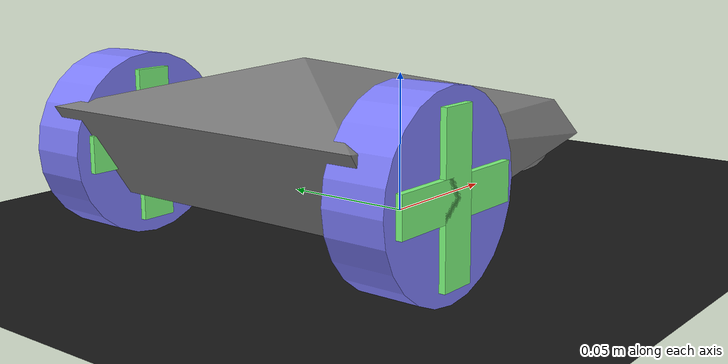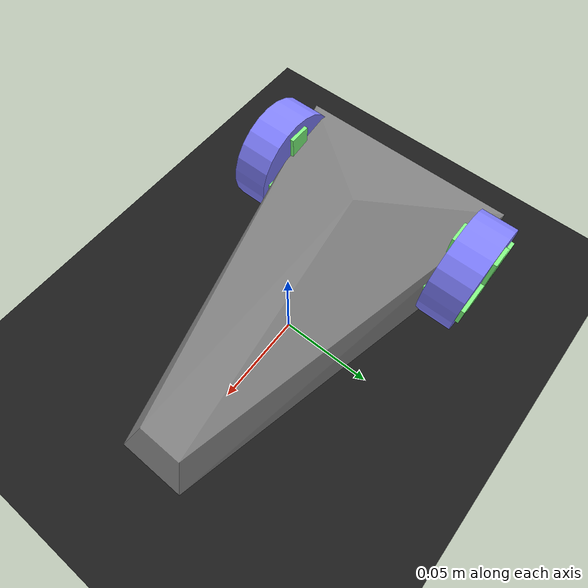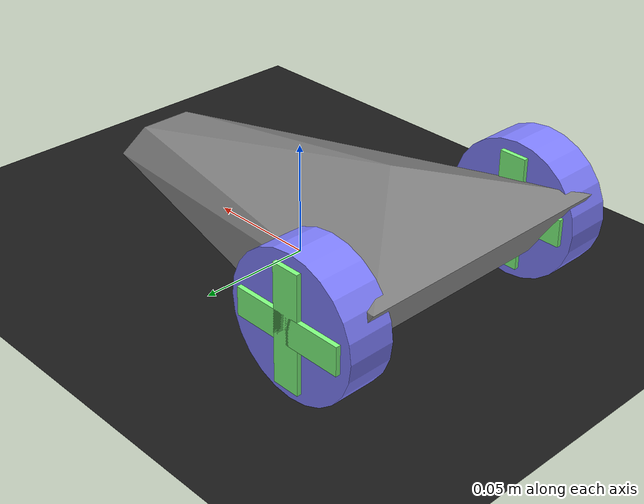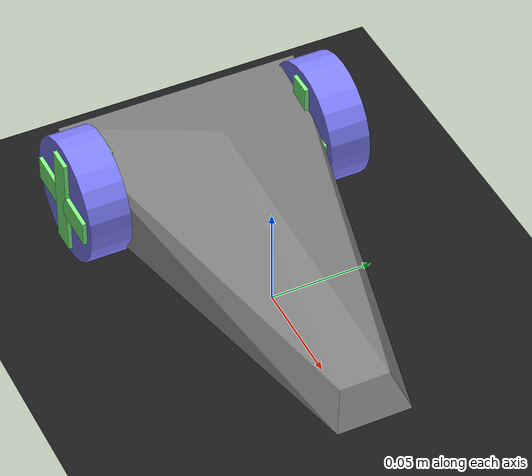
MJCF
<mujoco model="diffmobile scene">
  <include file="../urdf/car.xml"/>

  <option timestep="0.001" gravity="0 0 -9.80665"/>

  <statistic center="0.3 0 0.4" extent="1"/>

  <visual>
    <headlight diffuse="0.6 0.6 0.6" ambient="0.3 0.3 0.3" specular="0 0 0"/>
    <rgba haze="0.15 0.25 0.35 1"/>
    <global azimuth="120" elevation="-20"/>
  </visual>

  <asset>
    <texture type="skybox" builtin="gradient" rgb1="0.3 0.5 0.7" rgb2="0 0 0" width="512" height="3072"/>
    <texture type="2d" name="groundplane" builtin="flat" mark="edge" rgb1="0.1 0.1 0.1" rgb2="0.3 0.5 0.3" markrgb="0.8 0.8 0.8" width="300" height="300"/>
    <material name="groundplane" texture="groundplane" texuniform="true" texrepeat="5 5" reflectance="0.2"/>
  </asset>

  <worldbody>
    <light pos="0 0 1.5" dir="0 0 -1" directional="true"/>
    <geom name="floor" size="0 0 0.05" type="plane" material="groundplane"/>

  </worldbody>
</mujoco>

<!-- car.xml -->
<mujoco>
  <compiler autolimits="true" angle="radian"/>

  <asset>
    <texture name="grid" type="2d" builtin="checker" width="512" height="512" rgb1=".1 .2 .3" rgb2=".2 .3 .4"/>
    <material name="grid" texture="grid" texrepeat="1 1" texuniform="true" reflectance=".2"/>
    <mesh name="chasis" scale=".01 .006 .0015"
      vertex=" 9   2   0
              -10  10  10
               9  -2   0
               10  3  -10
               10 -3  -10
              -8   10 -10
              -10 -10  10
              -8  -10 -10
              -5   0   20"/>
  </asset>

  <default>
    <joint damping=".03" actuatorfrcrange="-0.5 0.5"/>
    <default class="wheel">
      <geom type="cylinder" size=".03 .01" rgba=".5 .5 1 1"/>
    </default>
    <default class="decor">
      <site type="box" rgba=".5 1 .5 1"/>
    </default>
  </default>

  <worldbody>
    <body name="car" pos="0 0 .03">
      <freejoint/>
      <light name="top light" pos="0 0 2" mode="trackcom" diffuse=".4 .4 .4"/>
      <geom name="chasis" type="mesh" mesh="chasis"/>
      <camera name="ext_camera" pos="0.5 0.0 0.5" euler="0.0 0.78 1.57" mode="track" resolution="1920 1080" sensorsize="5.37 4.04" focal="2.9 2.9"/>
      <geom name="front wheel" pos=".08 0 -.015" type="sphere" size=".015" condim="1" priority="1"/>
      <light name="front light" pos=".1 0 .02" dir="2 0 -1" diffuse="1 1 1"/>
      <body name="left wheel" pos="-.07 .06 0" zaxis="0 1 0">
        <joint name="left"/>
        <geom class="wheel"/>
        <site class="decor" size=".006 .025 .012"/>
        <site class="decor" size=".025 .006 .012"/>
      </body>
      <body name="right wheel" pos="-.07 -.06 0" zaxis="0 1 0">
        <joint name="right"/>
        <geom class="wheel"/>
        <site class="decor" size=".006 .025 .012"/>
        <site class="decor" size=".025 .006 .012"/>
      </body>
    </body>
  </worldbody>

  <tendon>
    <fixed name="forward">
      <joint joint="left" coef=".5"/>
      <joint joint="right" coef=".5"/>
    </fixed>
    <fixed name="turn">
      <joint joint="left" coef="-.5"/>
      <joint joint="right" coef=".5"/>
    </fixed>
  </tendon>

  <actuator>
    <motor name="forward" tendon="forward" ctrlrange="-1 1"/>
    <motor name="turn" tendon="turn" ctrlrange="-1 1"/>
  </actuator>

  <sensor>
    <framepos name="eePos" objtype="geom" objname="chasis"/>
    <framequat name="eeQuat" objtype="geom" objname="chasis"/>
    <framelinvel name="eeLinVel" objtype="geom" objname="chasis"/>
    <frameangvel name="eeAngVel" objtype="geom" objname="chasis"/>
    <jointactuatorfrc name="right" joint="right"/>
    <jointactuatorfrc name="left" joint="left"/>
  </sensor>
</mujoco>
